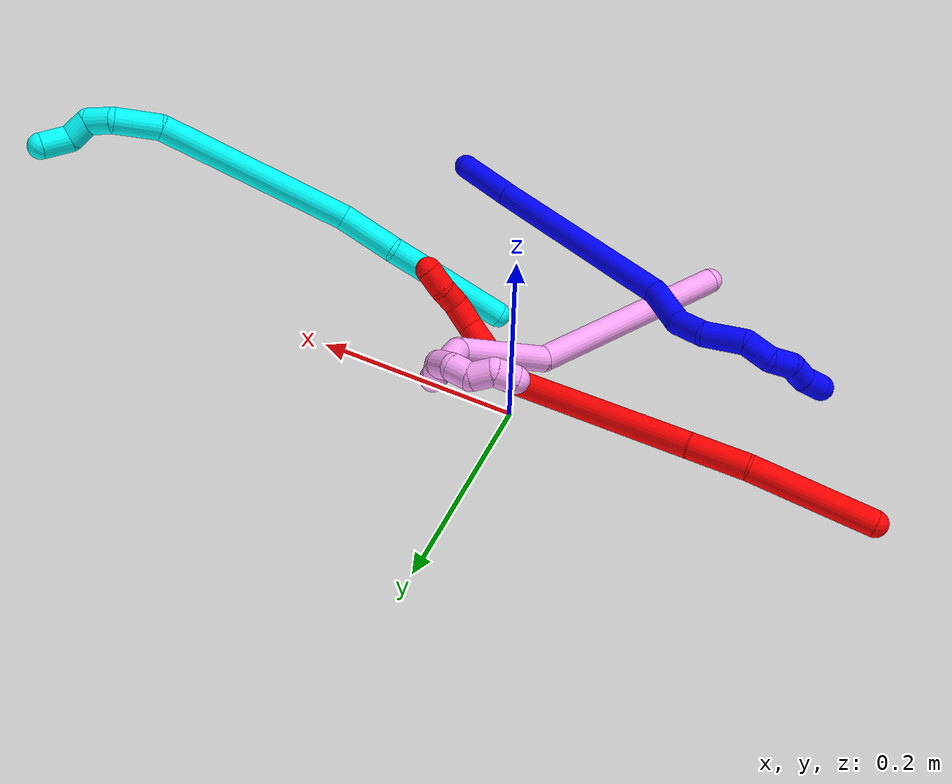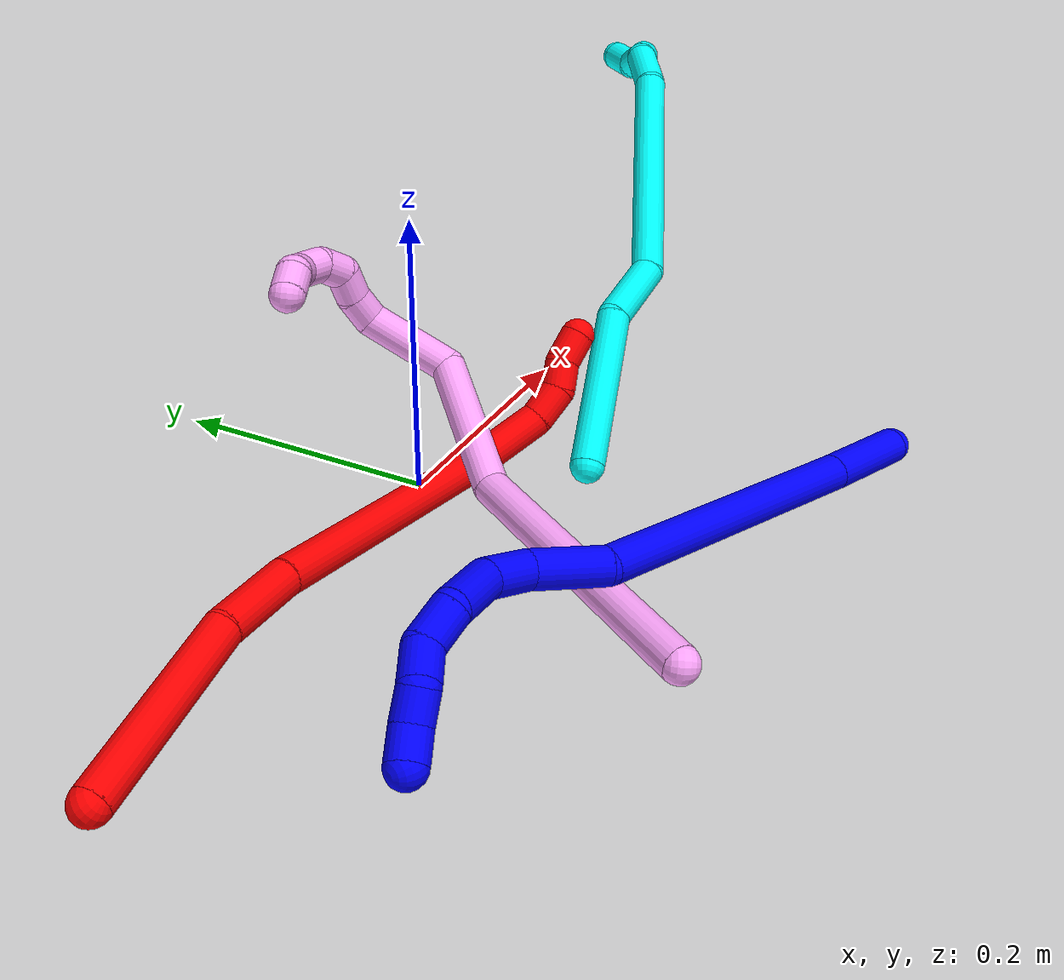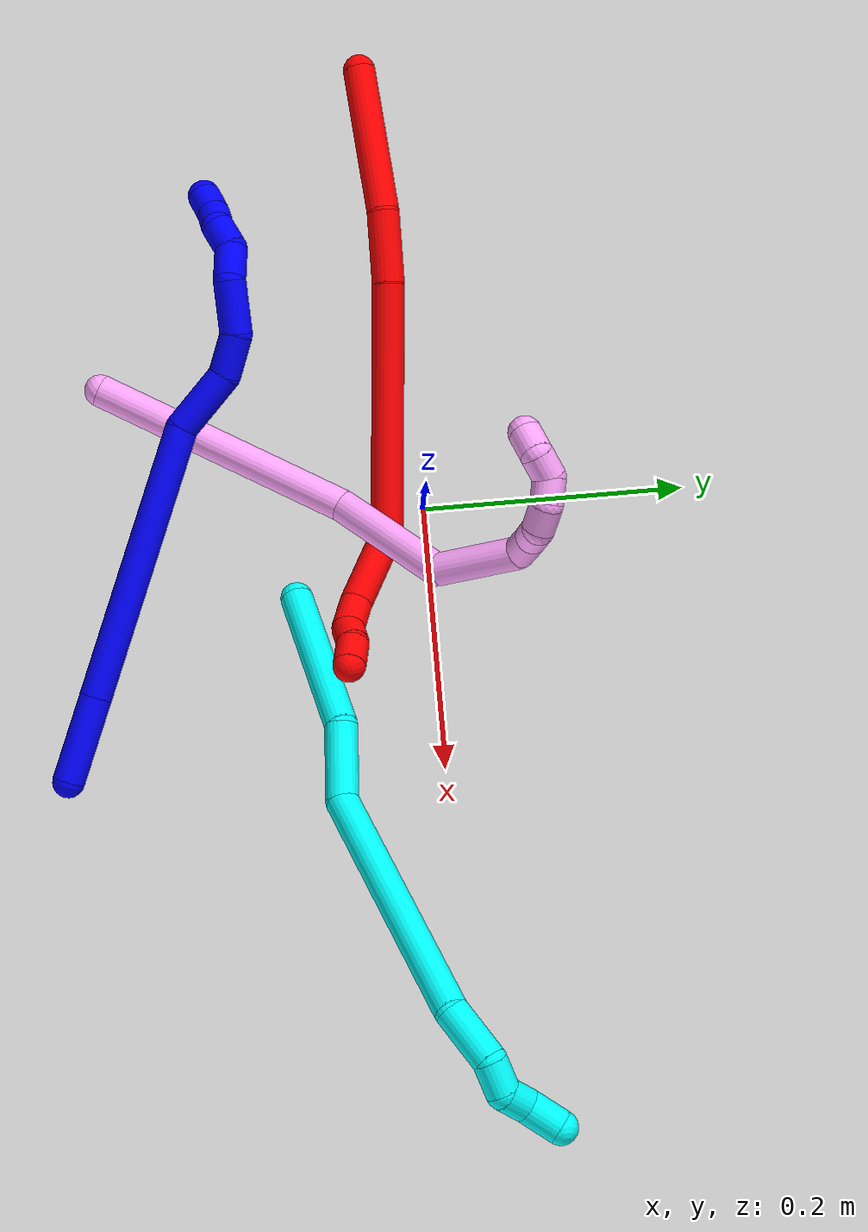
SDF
<sdf version="1.7">
 <world name="default">
  <plugin name="TubeGeneratorPlugin" filename="libtube_generator_plugin.so"/>
  <model name="photoneo_s_sensor">
   <static>1</static>
   <pose>0 0 2 1.57079 1.57079 3.14159</pose>
   <link name="link">
    <inertial><mass>0.1</mass></inertial>
    <sensor name="sensor" type="depth">
     <update_rate>30</update_rate>
     <camera>
      <horizontal_fov>1.22</horizontal_fov>
      <image><width>1920</width><height>1200</height><format>B8G8R8</format></image>
      <clip><near>0.1</near><far>4</far></clip>
      <depth_camera><output>points</output></depth_camera>
     </camera>
     <plugin name="camera_plugin" filename="libgazebo_ros_depth_camera.so">
      <baseline>0.2</baseline>
      <alwaysOn>1</alwaysOn>
      <updateRate>0.0</updateRate>
      <cameraName>camera_ir</cameraName>
      <imageTopicName>/camera/color/image_raw</imageTopicName>
      <cameraInfoTopicName>/camera/color/camera_info</cameraInfoTopicName>
      <depthImageTopicName>/camera/depth/image_raw</depthImageTopicName>
      <depthImageCameraInfoTopicName>/camera/depth/camera_info</depthImageCameraInfoTopicName>
      <pointCloudTopicName>/camera/depth/points</pointCloudTopicName>
      <frameName>fr_optical</frameName>
      <pointCloudCutoff>0.1</pointCloudCutoff>
      <pointCloudCutoffMax>2.0</pointCloudCutoffMax>
      <distortionK1>0</distortionK1>
      <distortionK2>0</distortionK2>
      <distortionK3>0</distortionK3>
      <distortionT1>0</distortionT1>
      <distortionT2>0</distortionT2>
      <CxPrime>0</CxPrime>
      <Cx>0</Cx>
      <Cy>0</Cy>
      <focalLength>0</focalLength>
      <hackBaseline>0</hackBaseline>
     </plugin>
    </sensor>
   </link>
  </model>
  <gravity>0 0 -9.8</gravity>
  <magnetic_field>6e-06 2.3e-05 -4.2e-05</magnetic_field>
  <atmosphere type="adiabatic"/>
  <physics name="default_physics" default="0" type="ode">
   <max_step_size>0.003</max_step_size>
   <real_time_factor>1</real_time_factor>
   <real_time_update_rate>1000</real_time_update_rate>
   <max_contacts>10000</max_contacts>
   <ode>
    <solver>
     <type>quick</type>
     <iters>100</iters>
     <sor>1.3</sor>
     <use_dynamic_moi_rescaling>0</use_dynamic_moi_rescaling>
    </solver>
    <constraints>
     <contact_max_correcting_vel>0</contact_max_correcting_vel>
     <contact_surface_layer>0.001</contact_surface_layer>
     <cfm>0</cfm>
     <erp>0.2</erp>
    </constraints>
   </ode>
  </physics>
  <scene><ambient>0.4 0.4 0.4 1</ambient><background>0.7 0.7 0.7 1</background><shadows>0</shadows></scene>
  <audio><device>default</device></audio>
  <spherical_coordinates>
   <surface_model>EARTH_WGS84</surface_model>
   <latitude_deg>0</latitude_deg>
   <longitude_deg>0</longitude_deg>
   <elevation>0</elevation>
   <heading_deg>0</heading_deg>
  </spherical_coordinates>
  <model name="bin">
   <static>1</static>
   <link name="bottom">
    <collision name="collision-bottom">
     <pose>0 0 -0.01 0 -0 0</pose>
     <geometry><box><size>0.8 0.6 0.02</size></box></geometry>
     <surface>
      <friction><ode><mu>100</mu><mu2>100</mu2></ode></friction>
      <contact><collide_bitmask>65535</collide_bitmask></contact>
     </surface>
    </collision>
   </link>
   <link name="west_wall">
    <collision name="collision-west_wall">
     <pose>-0.41 0 0.1 0 -0 0</pose>
     <geometry><box><size>0.02 0.6 0.2</size></box></geometry>
     <surface>
      <friction><ode><mu>100</mu><mu2>100</mu2></ode></friction>
      <contact><collide_bitmask>65535</collide_bitmask></contact>
     </surface>
    </collision>
   </link>
   <link name="east_wall">
    <collision name="collision-east_wall">
     <pose>0.41 0 0.1 0 -0 0</pose>
     <geometry><box><size>0.02 0.6 0.2</size></box></geometry>
     <surface>
      <friction><ode><mu>100</mu><mu2>100</mu2></ode></friction>
      <contact><collide_bitmask>65535</collide_bitmask></contact>
     </surface>
    </collision>
   </link>
   <link name="south_wall">
    <collision name="collision-south_wall">
     <pose>0 -0.31 0.1 0 -0 0</pose>
     <geometry><box><size>0.8 0.02 0.2</size></box></geometry>
     <surface>
      <friction><ode><mu>100</mu><mu2>100</mu2></ode></friction>
      <contact><collide_bitmask>65535</collide_bitmask></contact>
     </surface>
    </collision>
   </link>
   <link name="north_wall">
    <collision name="collision-north_wall">
     <pose>0 0.31 0.1 0 -0 0</pose>
     <geometry><box><size>0.8 0.02 0.2</size></box></geometry>
     <surface>
      <friction><ode><mu>100</mu><mu2>100</mu2></ode></friction>
      <contact><collide_bitmask>65535</collide_bitmask></contact>
     </surface>
    </collision>
   </link>
  </model>
  <model name="1">
   <static>0</static>
   <link name="1">
    <collision name="collision-cylinder-e_1_1_4">
     <pose>0.001792 -0.000652 -0.033823 3.12232 0.052916 2.44322</pose>
     <geometry><cylinder><radius>0.0125</radius><length>0.067754</length></cylinder></geometry>
     <surface>
      <friction><ode><mu>1.16</mu><mu2>1.16</mu2><slip1>0</slip1><slip2>0</slip2></ode></friction>
      <contact><ode><kp>1e+06</kp><kd>1</kd><max_vel>0</max_vel><min_depth>0.001</min_depth></ode></contact>
     </surface>
    </collision>
    <visual name="visual-cylinder-e_1_1_4">
     <pose>0.001792 -0.000652 -0.033823 3.12232 0.052916 2.44322</pose>
     <geometry><cylinder><radius>0.0125</radius><length>0.067754</length></cylinder></geometry>
     <material><ambient>0 0 1 1</ambient></material>
    </visual>
    <collision name="collision-cylinder-e_2_4_5">
     <pose>0.011237 -0.000486 -0.175051 -3.13398 0.07114 -2.92853</pose>
     <geometry><cylinder><radius>0.0125</radius><length>0.21536</length></cylinder></geometry>
     <surface>
      <friction><ode><mu>1.16</mu><mu2>1.16</mu2><slip1>0</slip1><slip2>0</slip2></ode></friction>
      <contact><ode><kp>1e+06</kp><kd>1</kd><max_vel>0</max_vel><min_depth>0.001</min_depth></ode></contact>
     </surface>
    </collision>
    <visual name="visual-cylinder-e_2_4_5">
     <pose>0.011237 -0.000486 -0.175051 -3.13398 0.07114 -2.92853</pose>
     <geometry><cylinder><radius>0.0125</radius><length>0.21536</length></cylinder></geometry>
     <material><ambient>0 0 1 1</ambient></material>
    </visual>
    <collision name="collision-cylinder-e_3_5_6">
     <pose>0.029992 -0.002408 -0.305545 3.02353 0.445429 2.63108</pose>
     <geometry><cylinder><radius>0.0125</radius><length>0.051531</length></cylinder></geometry>
     <surface>
      <friction><ode><mu>1.16</mu><mu2>1.16</mu2><slip1>0</slip1><slip2>0</slip2></ode></friction>
      <contact><ode><kp>1e+06</kp><kd>1</kd><max_vel>0</max_vel><min_depth>0.001</min_depth></ode></contact>
     </surface>
    </collision>
    <visual name="visual-cylinder-e_3_5_6">
     <pose>0.029992 -0.002408 -0.305545 3.02353 0.445429 2.63108</pose>
     <geometry><cylinder><radius>0.0125</radius><length>0.051531</length></cylinder></geometry>
     <material><ambient>0 0 1 1</ambient></material>
    </visual>
    <collision name="collision-cylinder-e_4_6_7">
     <pose>0.043391 -0.002389 -0.344675 -2.97139 0.140249 -1.37766</pose>
     <geometry><cylinder><radius>0.0125</radius><length>0.032874</length></cylinder></geometry>
     <surface>
      <friction><ode><mu>1.16</mu><mu2>1.16</mu2><slip1>0</slip1><slip2>0</slip2></ode></friction>
      <contact><ode><kp>1e+06</kp><kd>1</kd><max_vel>0</max_vel><min_depth>0.001</min_depth></ode></contact>
     </surface>
    </collision>
    <visual name="visual-cylinder-e_4_6_7">
     <pose>0.043391 -0.002389 -0.344675 -2.97139 0.140249 -1.37766</pose>
     <geometry><cylinder><radius>0.0125</radius><length>0.032874</length></cylinder></geometry>
     <material><ambient>0 0 1 1</ambient></material>
    </visual>
    <collision name="collision-cylinder-e_5_7_8">
     <pose>0.040502 0.006205 -0.379713 -2.8435 -0.255261 1.41432</pose>
     <geometry><cylinder><radius>0.0125</radius><length>0.041079</length></cylinder></geometry>
     <surface>
      <friction><ode><mu>1.16</mu><mu2>1.16</mu2><slip1>0</slip1><slip2>0</slip2></ode></friction>
      <contact><ode><kp>1e+06</kp><kd>1</kd><max_vel>0</max_vel><min_depth>0.001</min_depth></ode></contact>
     </surface>
    </collision>
    <visual name="visual-cylinder-e_5_7_8">
     <pose>0.040502 0.006205 -0.379713 -2.8435 -0.255261 1.41432</pose>
     <geometry><cylinder><radius>0.0125</radius><length>0.041079</length></cylinder></geometry>
     <material><ambient>0 0 1 1</ambient></material>
    </visual>
    <collision name="collision-cylinder-e_6_8_9">
     <pose>0.030451 0.009201 -0.411011 2.91467 -0.367858 -2.04242</pose>
     <geometry><cylinder><radius>0.0125</radius><length>0.027058</length></cylinder></geometry>
     <surface>
      <friction><ode><mu>1.16</mu><mu2>1.16</mu2><slip1>0</slip1><slip2>0</slip2></ode></friction>
      <contact><ode><kp>1e+06</kp><kd>1</kd><max_vel>0</max_vel><min_depth>0.001</min_depth></ode></contact>
     </surface>
    </collision>
    <visual name="visual-cylinder-e_6_8_9">
     <pose>0.030451 0.009201 -0.411011 2.91467 -0.367858 -2.04242</pose>
     <geometry><cylinder><radius>0.0125</radius><length>0.027058</length></cylinder></geometry>
     <material><ambient>0 0 1 1</ambient></material>
    </visual>
    <collision name="collision-cylinder-e_7_9_10">
     <pose>0.016617 0.006084 -0.430976 3.10546 -0.863263 -3.06317</pose>
     <geometry><cylinder><radius>0.0125</radius><length>0.023602</length></cylinder></geometry>
     <surface>
      <friction><ode><mu>1.16</mu><mu2>1.16</mu2><slip1>0</slip1><slip2>0</slip2></ode></friction>
      <contact><ode><kp>1e+06</kp><kd>1</kd><max_vel>0</max_vel><min_depth>0.001</min_depth></ode></contact>
     </surface>
    </collision>
    <visual name="visual-cylinder-e_7_9_10">
     <pose>0.016617 0.006084 -0.430976 3.10546 -0.863263 -3.06317</pose>
     <geometry><cylinder><radius>0.0125</radius><length>0.023602</length></cylinder></geometry>
     <material><ambient>0 0 1 1</ambient></material>
    </visual>
    <collision name="collision-cylinder-e_8_10_11">
     <pose>0.000835 0.000692 -0.444006 2.38001 -0.743359 -1.54413</pose>
     <geometry><cylinder><radius>0.0125</radius><length>0.020136</length></cylinder></geometry>
     <surface>
      <friction><ode><mu>1.16</mu><mu2>1.16</mu2><slip1>0</slip1><slip2>0</slip2></ode></friction>
      <contact><ode><kp>1e+06</kp><kd>1</kd><max_vel>0</max_vel><min_depth>0.001</min_depth></ode></contact>
     </surface>
    </collision>
    <visual name="visual-cylinder-e_8_10_11">
     <pose>0.000835 0.000692 -0.444006 2.38001 -0.743359 -1.54413</pose>
     <geometry><cylinder><radius>0.0125</radius><length>0.020136</length></cylinder></geometry>
     <material><ambient>0 0 1 1</ambient></material>
    </visual>
    <collision name="collision-cylinder-e_9_11_2">
     <pose>-0.013812 -0.006617 -0.455693 2.80757 -0.86375 -2.44027</pose>
     <geometry><cylinder><radius>0.0125</radius><length>0.020607</length></cylinder></geometry>
     <surface>
      <friction><ode><mu>1.16</mu><mu2>1.16</mu2><slip1>0</slip1><slip2>0</slip2></ode></friction>
      <contact><ode><kp>1e+06</kp><kd>1</kd><max_vel>0</max_vel><min_depth>0.001</min_depth></ode></contact>
     </surface>
    </collision>
    <visual name="visual-cylinder-e_9_11_2">
     <pose>-0.013812 -0.006617 -0.455693 2.80757 -0.86375 -2.44027</pose>
     <geometry><cylinder><radius>0.0125</radius><length>0.020607</length></cylinder></geometry>
     <material><ambient>0 0 1 1</ambient></material>
    </visual>
    <collision name="collision-sphere-2">
     <pose>-0.021645 -0.008811 -0.462016 0 -0 0</pose>
     <geometry><sphere><radius>0.0125</radius></sphere></geometry>
     <surface>
      <friction><ode><mu>1.16</mu><mu2>1.16</mu2><slip1>0</slip1><slip2>0</slip2></ode></friction>
      <contact><ode><kp>1e+06</kp><kd>1</kd><max_vel>0</max_vel><min_depth>0.001</min_depth></ode></contact>
     </surface>
    </collision>
    <visual name="visual-sphere-2">
     <pose>-0.021645 -0.008811 -0.462016 0 -0 0</pose>
     <geometry><sphere><radius>0.0125</radius></sphere></geometry>
     <material><ambient>0 0 1 1</ambient></material>
    </visual>
    <collision name="collision-sphere-11">
     <pose>-0.005978 -0.004423 -0.44937 0 -0 0</pose>
     <geometry><sphere><radius>0.0125</radius></sphere></geometry>
     <surface>
      <friction><ode><mu>1.16</mu><mu2>1.16</mu2><slip1>0</slip1><slip2>0</slip2></ode></friction>
      <contact><ode><kp>1e+06</kp><kd>1</kd><max_vel>0</max_vel><min_depth>0.001</min_depth></ode></contact>
     </surface>
    </collision>
    <visual name="visual-sphere-11">
     <pose>-0.005978 -0.004423 -0.44937 0 -0 0</pose>
     <geometry><sphere><radius>0.0125</radius></sphere></geometry>
     <material><ambient>0 0 1 1</ambient></material>
    </visual>
    <collision name="collision-sphere-10">
     <pose>0.007649 0.005807 -0.438641 0 -0 0</pose>
     <geometry><sphere><radius>0.0125</radius></sphere></geometry>
     <surface>
      <friction><ode><mu>1.16</mu><mu2>1.16</mu2><slip1>0</slip1><slip2>0</slip2></ode></friction>
      <contact><ode><kp>1e+06</kp><kd>1</kd><max_vel>0</max_vel><min_depth>0.001</min_depth></ode></contact>
     </surface>
    </collision>
    <visual name="visual-sphere-10">
     <pose>0.007649 0.005807 -0.438641 0 -0 0</pose>
     <geometry><sphere><radius>0.0125</radius></sphere></geometry>
     <material><ambient>0 0 1 1</ambient></material>
    </visual>
    <collision name="collision-sphere-9">
     <pose>0.025586 0.006361 -0.423311 0 -0 0</pose>
     <geometry><sphere><radius>0.0125</radius></sphere></geometry>
     <surface>
      <friction><ode><mu>1.16</mu><mu2>1.16</mu2><slip1>0</slip1><slip2>0</slip2></ode></friction>
      <contact><ode><kp>1e+06</kp><kd>1</kd><max_vel>0</max_vel><min_depth>0.001</min_depth></ode></contact>
     </surface>
    </collision>
    <visual name="visual-sphere-9">
     <pose>0.025586 0.006361 -0.423311 0 -0 0</pose>
     <geometry><sphere><radius>0.0125</radius></sphere></geometry>
     <material><ambient>0 0 1 1</ambient></material>
    </visual>
    <collision name="collision-sphere-4">
     <pose>0.003584 -0.001304 -0.067646 0 -0 0</pose>
     <geometry><sphere><radius>0.0125</radius></sphere></geometry>
     <surface>
      <friction><ode><mu>1.16</mu><mu2>1.16</mu2><slip1>0</slip1><slip2>0</slip2></ode></friction>
      <contact><ode><kp>1e+06</kp><kd>1</kd><max_vel>0</max_vel><min_depth>0.001</min_depth></ode></contact>
     </surface>
    </collision>
    <visual name="visual-sphere-4">
     <pose>0.003584 -0.001304 -0.067646 0 -0 0</pose>
     <geometry><sphere><radius>0.0125</radius></sphere></geometry>
     <material><ambient>0 0 1 1</ambient></material>
    </visual>
    <collision name="collision-sphere-1">
     <geometry><sphere><radius>0.0125</radius></sphere></geometry>
     <surface>
      <friction><ode><mu>1.16</mu><mu2>1.16</mu2><slip1>0</slip1><slip2>0</slip2></ode></friction>
      <contact><ode><kp>1e+06</kp><kd>1</kd><max_vel>0</max_vel><min_depth>0.001</min_depth></ode></contact>
     </surface>
    </collision>
    <visual name="visual-sphere-1">
     <geometry><sphere><radius>0.0125</radius></sphere></geometry>
     <material><ambient>0 0 1 1</ambient></material>
    </visual>
    <collision name="collision-sphere-8">
     <pose>0.035316 0.012042 -0.398711 0 -0 0</pose>
     <geometry><sphere><radius>0.0125</radius></sphere></geometry>
     <surface>
      <friction><ode><mu>1.16</mu><mu2>1.16</mu2><slip1>0</slip1><slip2>0</slip2></ode></friction>
      <contact><ode><kp>1e+06</kp><kd>1</kd><max_vel>0</max_vel><min_depth>0.001</min_depth></ode></contact>
     </surface>
    </collision>
    <visual name="visual-sphere-8">
     <pose>0.035316 0.012042 -0.398711 0 -0 0</pose>
     <geometry><sphere><radius>0.0125</radius></sphere></geometry>
     <material><ambient>0 0 1 1</ambient></material>
    </visual>
    <collision name="collision-sphere-5">
     <pose>0.018891 0.000331 -0.282455 0 -0 0</pose>
     <geometry><sphere><radius>0.0125</radius></sphere></geometry>
     <surface>
      <friction><ode><mu>1.16</mu><mu2>1.16</mu2><slip1>0</slip1><slip2>0</slip2></ode></friction>
      <contact><ode><kp>1e+06</kp><kd>1</kd><max_vel>0</max_vel><min_depth>0.001</min_depth></ode></contact>
     </surface>
    </collision>
    <visual name="visual-sphere-5">
     <pose>0.018891 0.000331 -0.282455 0 -0 0</pose>
     <geometry><sphere><radius>0.0125</radius></sphere></geometry>
     <material><ambient>0 0 1 1</ambient></material>
    </visual>
    <collision name="collision-sphere-6">
     <pose>0.041093 -0.005146 -0.328634 0 -0 0</pose>
     <geometry><sphere><radius>0.0125</radius></sphere></geometry>
     <surface>
      <friction><ode><mu>1.16</mu><mu2>1.16</mu2><slip1>0</slip1><slip2>0</slip2></ode></friction>
      <contact><ode><kp>1e+06</kp><kd>1</kd><max_vel>0</max_vel><min_depth>0.001</min_depth></ode></contact>
     </surface>
    </collision>
    <visual name="visual-sphere-6">
     <pose>0.041093 -0.005146 -0.328634 0 -0 0</pose>
     <geometry><sphere><radius>0.0125</radius></sphere></geometry>
     <material><ambient>0 0 1 1</ambient></material>
    </visual>
    <collision name="collision-sphere-7">
     <pose>0.045689 0.000368 -0.360715 0 -0 0</pose>
     <geometry><sphere><radius>0.0125</radius></sphere></geometry>
     <surface>
      <friction><ode><mu>1.16</mu><mu2>1.16</mu2><slip1>0</slip1><slip2>0</slip2></ode></friction>
      <contact><ode><kp>1e+06</kp><kd>1</kd><max_vel>0</max_vel><min_depth>0.001</min_depth></ode></contact>
     </surface>
    </collision>
    <visual name="visual-sphere-7">
     <pose>0.045689 0.000368 -0.360715 0 -0 0</pose>
     <geometry><sphere><radius>0.0125</radius></sphere></geometry>
     <material><ambient>0 0 1 1</ambient></material>
    </visual>
    <inertial>
     <pose>0.016251 0.000347 -0.244577 0 -0 0</pose>
     <mass>0.5</mass>
     <inertia>
      <ixx>-0.001009</ixx>
      <ixy>0</ixy>
      <ixz>0</ixz>
      <iyy>0.000705</iyy>
      <iyz>0</iyz>
      <izz>-0.000103</izz>
     </inertia>
    </inertial>
   </link>
   <pose>0.185818 -0.287473 0.013112 1.62433 -0.503338 1.20701</pose>
  </model>
  <model name="2">
   <static>0</static>
   <link name="2">
    <collision name="collision-cylinder-e_1_1_4">
     <pose>0.050939 0.020466 0.023648 -0.713378 1.02018 -0.411064</pose>
     <geometry><cylinder><radius>0.0125</radius><length>0.119546</length></cylinder></geometry>
     <surface>
      <friction><ode><mu>1.16</mu><mu2>1.16</mu2><slip1>0</slip1><slip2>0</slip2></ode></friction>
      <contact><ode><kp>1e+06</kp><kd>1</kd><max_vel>0</max_vel><min_depth>0.001</min_depth></ode></contact>
     </surface>
    </collision>
    <visual name="visual-cylinder-e_1_1_4">
     <pose>0.050939 0.020466 0.023648 -0.713378 1.02018 -0.411064</pose>
     <geometry><cylinder><radius>0.0125</radius><length>0.119546</length></cylinder></geometry>
     <material><ambient>1 0 0 1</ambient></material>
    </visual>
    <collision name="collision-cylinder-e_2_4_5">
     <pose>0.127924 0.044915 0.056053 -0.42697 1.21697 -0.299792</pose>
     <geometry><cylinder><radius>0.0125</radius><length>0.055532</length></cylinder></geometry>
     <surface>
      <friction><ode><mu>1.16</mu><mu2>1.16</mu2><slip1>0</slip1><slip2>0</slip2></ode></friction>
      <contact><ode><kp>1e+06</kp><kd>1</kd><max_vel>0</max_vel><min_depth>0.001</min_depth></ode></contact>
     </surface>
    </collision>
    <visual name="visual-cylinder-e_2_4_5">
     <pose>0.127924 0.044915 0.056053 -0.42697 1.21697 -0.299792</pose>
     <geometry><cylinder><radius>0.0125</radius><length>0.055532</length></cylinder></geometry>
     <material><ambient>1 0 0 1</ambient></material>
    </visual>
    <collision name="collision-cylinder-e_3_5_6">
     <pose>0.245574 0.051078 0.093304 -0.076323 1.2684 -0.056153</pose>
     <geometry><cylinder><radius>0.0125</radius><length>0.191916</length></cylinder></geometry>
     <surface>
      <friction><ode><mu>1.16</mu><mu2>1.16</mu2><slip1>0</slip1><slip2>0</slip2></ode></friction>
      <contact><ode><kp>1e+06</kp><kd>1</kd><max_vel>0</max_vel><min_depth>0.001</min_depth></ode></contact>
     </surface>
    </collision>
    <visual name="visual-cylinder-e_3_5_6">
     <pose>0.245574 0.051078 0.093304 -0.076323 1.2684 -0.056153</pose>
     <geometry><cylinder><radius>0.0125</radius><length>0.191916</length></cylinder></geometry>
     <material><ambient>1 0 0 1</ambient></material>
    </visual>
    <collision name="collision-cylinder-e_4_6_7">
     <pose>0.356268 0.054064 0.146622 -0.032491 0.655317 -0.011045</pose>
     <geometry><cylinder><radius>0.0125</radius><length>0.062652</length></cylinder></geometry>
     <surface>
      <friction><ode><mu>1.16</mu><mu2>1.16</mu2><slip1>0</slip1><slip2>0</slip2></ode></friction>
      <contact><ode><kp>1e+06</kp><kd>1</kd><max_vel>0</max_vel><min_depth>0.001</min_depth></ode></contact>
     </surface>
    </collision>
    <visual name="visual-cylinder-e_4_6_7">
     <pose>0.356268 0.054064 0.146622 -0.032491 0.655317 -0.011045</pose>
     <geometry><cylinder><radius>0.0125</radius><length>0.062652</length></cylinder></geometry>
     <material><ambient>1 0 0 1</ambient></material>
    </visual>
    <collision name="collision-cylinder-e_5_7_8">
     <pose>0.381514 0.058812 0.182406 -0.345226 0.486233 -0.086431</pose>
     <geometry><cylinder><radius>0.0125</radius><length>0.026349</length></cylinder></geometry>
     <surface>
      <friction><ode><mu>1.16</mu><mu2>1.16</mu2><slip1>0</slip1><slip2>0</slip2></ode></friction>
      <contact><ode><kp>1e+06</kp><kd>1</kd><max_vel>0</max_vel><min_depth>0.001</min_depth></ode></contact>
     </surface>
    </collision>
    <visual name="visual-cylinder-e_5_7_8">
     <pose>0.381514 0.058812 0.182406 -0.345226 0.486233 -0.086431</pose>
     <geometry><cylinder><radius>0.0125</radius><length>0.026349</length></cylinder></geometry>
     <material><ambient>1 0 0 1</ambient></material>
    </visual>
    <collision name="collision-cylinder-e_6_8_9">
     <pose>0.390832 0.070106 0.199987 -0.837665 0.309253 -0.138557</pose>
     <geometry><cylinder><radius>0.0125</radius><length>0.020773</length></cylinder></geometry>
     <surface>
      <friction><ode><mu>1.16</mu><mu2>1.16</mu2><slip1>0</slip1><slip2>0</slip2></ode></friction>
      <contact><ode><kp>1e+06</kp><kd>1</kd><max_vel>0</max_vel><min_depth>0.001</min_depth></ode></contact>
     </surface>
    </collision>
    <visual name="visual-cylinder-e_6_8_9">
     <pose>0.390832 0.070106 0.199987 -0.837665 0.309253 -0.138557</pose>
     <geometry><cylinder><radius>0.0125</radius><length>0.020773</length></cylinder></geometry>
     <material><ambient>1 0 0 1</ambient></material>
    </visual>
    <collision name="collision-cylinder-e_7_9_2">
     <pose>0.399081 0.082429 0.215792 -0.496193 0.453347 -0.116715</pose>
     <geometry><cylinder><radius>0.0125</radius><length>0.023232</length></cylinder></geometry>
     <surface>
      <friction><ode><mu>1.16</mu><mu2>1.16</mu2><slip1>0</slip1><slip2>0</slip2></ode></friction>
      <contact><ode><kp>1e+06</kp><kd>1</kd><max_vel>0</max_vel><min_depth>0.001</min_depth></ode></contact>
     </surface>
    </collision>
    <visual name="visual-cylinder-e_7_9_2">
     <pose>0.399081 0.082429 0.215792 -0.496193 0.453347 -0.116715</pose>
     <geometry><cylinder><radius>0.0125</radius><length>0.023232</length></cylinder></geometry>
     <material><ambient>1 0 0 1</ambient></material>
    </visual>
    <collision name="collision-sphere-2">
     <pose>0.404168 0.087401 0.224975 0 -0 0</pose>
     <geometry><sphere><radius>0.0125</radius></sphere></geometry>
     <surface>
      <friction><ode><mu>1.16</mu><mu2>1.16</mu2><slip1>0</slip1><slip2>0</slip2></ode></friction>
      <contact><ode><kp>1e+06</kp><kd>1</kd><max_vel>0</max_vel><min_depth>0.001</min_depth></ode></contact>
     </surface>
    </collision>
    <visual name="visual-sphere-2">
     <pose>0.404168 0.087401 0.224975 0 -0 0</pose>
     <geometry><sphere><radius>0.0125</radius></sphere></geometry>
     <material><ambient>1 0 0 1</ambient></material>
    </visual>
    <collision name="collision-sphere-9">
     <pose>0.393993 0.077458 0.206608 0 -0 0</pose>
     <geometry><sphere><radius>0.0125</radius></sphere></geometry>
     <surface>
      <friction><ode><mu>1.16</mu><mu2>1.16</mu2><slip1>0</slip1><slip2>0</slip2></ode></friction>
      <contact><ode><kp>1e+06</kp><kd>1</kd><max_vel>0</max_vel><min_depth>0.001</min_depth></ode></contact>
     </surface>
    </collision>
    <visual name="visual-sphere-9">
     <pose>0.393993 0.077458 0.206608 0 -0 0</pose>
     <geometry><sphere><radius>0.0125</radius></sphere></geometry>
     <material><ambient>1 0 0 1</ambient></material>
    </visual>
    <collision name="collision-sphere-4">
     <pose>0.101878 0.040931 0.047296 0 -0 0</pose>
     <geometry><sphere><radius>0.0125</radius></sphere></geometry>
     <surface>
      <friction><ode><mu>1.16</mu><mu2>1.16</mu2><slip1>0</slip1><slip2>0</slip2></ode></friction>
      <contact><ode><kp>1e+06</kp><kd>1</kd><max_vel>0</max_vel><min_depth>0.001</min_depth></ode></contact>
     </surface>
    </collision>
    <visual name="visual-sphere-4">
     <pose>0.101878 0.040931 0.047296 0 -0 0</pose>
     <geometry><sphere><radius>0.0125</radius></sphere></geometry>
     <material><ambient>1 0 0 1</ambient></material>
    </visual>
    <collision name="collision-sphere-1">
     <geometry><sphere><radius>0.0125</radius></sphere></geometry>
     <surface>
      <friction><ode><mu>1.16</mu><mu2>1.16</mu2><slip1>0</slip1><slip2>0</slip2></ode></friction>
      <contact><ode><kp>1e+06</kp><kd>1</kd><max_vel>0</max_vel><min_depth>0.001</min_depth></ode></contact>
     </surface>
    </collision>
    <visual name="visual-sphere-1">
     <geometry><sphere><radius>0.0125</radius></sphere></geometry>
     <material><ambient>1 0 0 1</ambient></material>
    </visual>
    <collision name="collision-sphere-8">
     <pose>0.387671 0.062754 0.193366 0 -0 0</pose>
     <geometry><sphere><radius>0.0125</radius></sphere></geometry>
     <surface>
      <friction><ode><mu>1.16</mu><mu2>1.16</mu2><slip1>0</slip1><slip2>0</slip2></ode></friction>
      <contact><ode><kp>1e+06</kp><kd>1</kd><max_vel>0</max_vel><min_depth>0.001</min_depth></ode></contact>
     </surface>
    </collision>
    <visual name="visual-sphere-8">
     <pose>0.387671 0.062754 0.193366 0 -0 0</pose>
     <geometry><sphere><radius>0.0125</radius></sphere></geometry>
     <material><ambient>1 0 0 1</ambient></material>
    </visual>
    <collision name="collision-sphere-5">
     <pose>0.15397 0.048899 0.06481 0 -0 0</pose>
     <geometry><sphere><radius>0.0125</radius></sphere></geometry>
     <surface>
      <friction><ode><mu>1.16</mu><mu2>1.16</mu2><slip1>0</slip1><slip2>0</slip2></ode></friction>
      <contact><ode><kp>1e+06</kp><kd>1</kd><max_vel>0</max_vel><min_depth>0.001</min_depth></ode></contact>
     </surface>
    </collision>
    <visual name="visual-sphere-5">
     <pose>0.15397 0.048899 0.06481 0 -0 0</pose>
     <geometry><sphere><radius>0.0125</radius></sphere></geometry>
     <material><ambient>1 0 0 1</ambient></material>
    </visual>
    <collision name="collision-sphere-6">
     <pose>0.337177 0.053257 0.121798 0 -0 0</pose>
     <geometry><sphere><radius>0.0125</radius></sphere></geometry>
     <surface>
      <friction><ode><mu>1.16</mu><mu2>1.16</mu2><slip1>0</slip1><slip2>0</slip2></ode></friction>
      <contact><ode><kp>1e+06</kp><kd>1</kd><max_vel>0</max_vel><min_depth>0.001</min_depth></ode></contact>
     </surface>
    </collision>
    <visual name="visual-sphere-6">
     <pose>0.337177 0.053257 0.121798 0 -0 0</pose>
     <geometry><sphere><radius>0.0125</radius></sphere></geometry>
     <material><ambient>1 0 0 1</ambient></material>
    </visual>
    <collision name="collision-sphere-7">
     <pose>0.375358 0.054871 0.171446 0 -0 0</pose>
     <geometry><sphere><radius>0.0125</radius></sphere></geometry>
     <surface>
      <friction><ode><mu>1.16</mu><mu2>1.16</mu2><slip1>0</slip1><slip2>0</slip2></ode></friction>
      <contact><ode><kp>1e+06</kp><kd>1</kd><max_vel>0</max_vel><min_depth>0.001</min_depth></ode></contact>
     </surface>
    </collision>
    <visual name="visual-sphere-7">
     <pose>0.375358 0.054871 0.171446 0 -0 0</pose>
     <geometry><sphere><radius>0.0125</radius></sphere></geometry>
     <material><ambient>1 0 0 1</ambient></material>
    </visual>
    <inertial>
     <pose>0.220173 0.046103 0.094013 0 -0 0</pose>
     <mass>0.5</mass>
     <inertia>
      <ixx>0.000265</ixx>
      <ixy>0</ixy>
      <ixz>0</ixz>
      <iyy>0.000739</iyy>
      <iyz>0</iyz>
      <izz>-0.000779</izz>
     </inertia>
    </inertial>
   </link>
   <pose>-0.344339 -0.020346 0.012423 0.762408 0.354855 0.100729</pose>
  </model>
  <model name="3">
   <static>0</static>
   <link name="3">
    <collision name="collision-cylinder-e_1_1_4">
     <pose>0.004058 0.0012 0.062717 -0.019139 0.064609 -0.000619</pose>
     <geometry><cylinder><radius>0.0125</radius><length>0.125719</length></cylinder></geometry>
     <surface>
      <friction><ode><mu>1.16</mu><mu2>1.16</mu2><slip1>0</slip1><slip2>0</slip2></ode></friction>
      <contact><ode><kp>1e+06</kp><kd>1</kd><max_vel>0</max_vel><min_depth>0.001</min_depth></ode></contact>
     </surface>
    </collision>
    <visual name="visual-cylinder-e_1_1_4">
     <pose>0.004058 0.0012 0.062717 -0.019139 0.064609 -0.000619</pose>
     <geometry><cylinder><radius>0.0125</radius><length>0.125719</length></cylinder></geometry>
     <material><ambient>0.003922 1 0.996078 1</ambient></material>
    </visual>
    <collision name="collision-cylinder-e_2_4_5">
     <pose>0.021537 0.002323 0.151528 0.002974 0.475012 0.00072</pose>
     <geometry><cylinder><radius>0.0125</radius><length>0.058686</length></cylinder></geometry>
     <surface>
      <friction><ode><mu>1.16</mu><mu2>1.16</mu2><slip1>0</slip1><slip2>0</slip2></ode></friction>
      <contact><ode><kp>1e+06</kp><kd>1</kd><max_vel>0</max_vel><min_depth>0.001</min_depth></ode></contact>
     </surface>
    </collision>
    <visual name="visual-cylinder-e_2_4_5">
     <pose>0.021537 0.002323 0.151528 0.002974 0.475012 0.00072</pose>
     <geometry><cylinder><radius>0.0125</radius><length>0.058686</length></cylinder></geometry>
     <material><ambient>0.003922 1 0.996078 1</ambient></material>
    </visual>
    <collision name="collision-cylinder-e_3_5_6">
     <pose>0.03317 0.013272 0.274684 -0.113113 -0.018292 0.001036</pose>
     <geometry><cylinder><radius>0.0125</radius><length>0.195405</length></cylinder></geometry>
     <surface>
      <friction><ode><mu>1.16</mu><mu2>1.16</mu2><slip1>0</slip1><slip2>0</slip2></ode></friction>
      <contact><ode><kp>1e+06</kp><kd>1</kd><max_vel>0</max_vel><min_depth>0.001</min_depth></ode></contact>
     </surface>
    </collision>
    <visual name="visual-cylinder-e_3_5_6">
     <pose>0.03317 0.013272 0.274684 -0.113113 -0.018292 0.001036</pose>
     <geometry><cylinder><radius>0.0125</radius><length>0.195405</length></cylinder></geometry>
     <material><ambient>0.003922 1 0.996078 1</ambient></material>
    </visual>
    <collision name="collision-cylinder-e_4_6_7">
     <pose>0.031753 0.033524 0.391715 -0.432808 0.016823 -0.003699</pose>
     <geometry><cylinder><radius>0.0125</radius><length>0.044001</length></cylinder></geometry>
     <surface>
      <friction><ode><mu>1.16</mu><mu2>1.16</mu2><slip1>0</slip1><slip2>0</slip2></ode></friction>
      <contact><ode><kp>1e+06</kp><kd>1</kd><max_vel>0</max_vel><min_depth>0.001</min_depth></ode></contact>
     </surface>
    </collision>
    <visual name="visual-cylinder-e_4_6_7">
     <pose>0.031753 0.033524 0.391715 -0.432808 0.016823 -0.003699</pose>
     <geometry><cylinder><radius>0.0125</radius><length>0.044001</length></cylinder></geometry>
     <material><ambient>0.003922 1 0.996078 1</ambient></material>
    </visual>
    <collision name="collision-cylinder-e_5_7_8">
     <pose>0.038006 0.049466 0.420266 -0.66405 0.495025 -0.173813</pose>
     <geometry><cylinder><radius>0.0125</radius><length>0.024768</length></cylinder></geometry>
     <surface>
      <friction><ode><mu>1.16</mu><mu2>1.16</mu2><slip1>0</slip1><slip2>0</slip2></ode></friction>
      <contact><ode><kp>1e+06</kp><kd>1</kd><max_vel>0</max_vel><min_depth>0.001</min_depth></ode></contact>
     </surface>
    </collision>
    <visual name="visual-cylinder-e_5_7_8">
     <pose>0.038006 0.049466 0.420266 -0.66405 0.495025 -0.173813</pose>
     <geometry><cylinder><radius>0.0125</radius><length>0.024768</length></cylinder></geometry>
     <material><ambient>0.003922 1 0.996078 1</ambient></material>
    </visual>
    <collision name="collision-cylinder-e_6_8_9">
     <pose>0.046129 0.067356 0.431235 -1.36029 0.193647 -0.156811</pose>
     <geometry><cylinder><radius>0.0125</radius><length>0.023286</length></cylinder></geometry>
     <surface>
      <friction><ode><mu>1.16</mu><mu2>1.16</mu2><slip1>0</slip1><slip2>0</slip2></ode></friction>
      <contact><ode><kp>1e+06</kp><kd>1</kd><max_vel>0</max_vel><min_depth>0.001</min_depth></ode></contact>
     </surface>
    </collision>
    <visual name="visual-cylinder-e_6_8_9">
     <pose>0.046129 0.067356 0.431235 -1.36029 0.193647 -0.156811</pose>
     <geometry><cylinder><radius>0.0125</radius><length>0.023286</length></cylinder></geometry>
     <material><ambient>0.003922 1 0.996078 1</ambient></material>
    </visual>
    <collision name="collision-cylinder-e_7_9_2">
     <pose>0.046457 0.088618 0.443237 -0.809431 -0.136435 0.058518</pose>
     <geometry><cylinder><radius>0.0125</radius><length>0.028135</length></cylinder></geometry>
     <surface>
      <friction><ode><mu>1.16</mu><mu2>1.16</mu2><slip1>0</slip1><slip2>0</slip2></ode></friction>
      <contact><ode><kp>1e+06</kp><kd>1</kd><max_vel>0</max_vel><min_depth>0.001</min_depth></ode></contact>
     </surface>
    </collision>
    <visual name="visual-cylinder-e_7_9_2">
     <pose>0.046457 0.088618 0.443237 -0.809431 -0.136435 0.058518</pose>
     <geometry><cylinder><radius>0.0125</radius><length>0.028135</length></cylinder></geometry>
     <material><ambient>0.003922 1 0.996078 1</ambient></material>
    </visual>
    <collision name="collision-sphere-2">
     <pose>0.044543 0.098706 0.452853 0 -0 0</pose>
     <geometry><sphere><radius>0.0125</radius></sphere></geometry>
     <surface>
      <friction><ode><mu>1.16</mu><mu2>1.16</mu2><slip1>0</slip1><slip2>0</slip2></ode></friction>
      <contact><ode><kp>1e+06</kp><kd>1</kd><max_vel>0</max_vel><min_depth>0.001</min_depth></ode></contact>
     </surface>
    </collision>
    <visual name="visual-sphere-2">
     <pose>0.044543 0.098706 0.452853 0 -0 0</pose>
     <geometry><sphere><radius>0.0125</radius></sphere></geometry>
     <material><ambient>0.003922 1 0.996078 1</ambient></material>
    </visual>
    <collision name="collision-sphere-9">
     <pose>0.04837 0.078529 0.433622 0 -0 0</pose>
     <geometry><sphere><radius>0.0125</radius></sphere></geometry>
     <surface>
      <friction><ode><mu>1.16</mu><mu2>1.16</mu2><slip1>0</slip1><slip2>0</slip2></ode></friction>
      <contact><ode><kp>1e+06</kp><kd>1</kd><max_vel>0</max_vel><min_depth>0.001</min_depth></ode></contact>
     </surface>
    </collision>
    <visual name="visual-sphere-9">
     <pose>0.04837 0.078529 0.433622 0 -0 0</pose>
     <geometry><sphere><radius>0.0125</radius></sphere></geometry>
     <material><ambient>0.003922 1 0.996078 1</ambient></material>
    </visual>
    <collision name="collision-sphere-4">
     <pose>0.008117 0.002401 0.125434 0 -0 0</pose>
     <geometry><sphere><radius>0.0125</radius></sphere></geometry>
     <surface>
      <friction><ode><mu>1.16</mu><mu2>1.16</mu2><slip1>0</slip1><slip2>0</slip2></ode></friction>
      <contact><ode><kp>1e+06</kp><kd>1</kd><max_vel>0</max_vel><min_depth>0.001</min_depth></ode></contact>
     </surface>
    </collision>
    <visual name="visual-sphere-4">
     <pose>0.008117 0.002401 0.125434 0 -0 0</pose>
     <geometry><sphere><radius>0.0125</radius></sphere></geometry>
     <material><ambient>0.003922 1 0.996078 1</ambient></material>
    </visual>
    <collision name="collision-sphere-1">
     <geometry><sphere><radius>0.0125</radius></sphere></geometry>
     <surface>
      <friction><ode><mu>1.16</mu><mu2>1.16</mu2><slip1>0</slip1><slip2>0</slip2></ode></friction>
      <contact><ode><kp>1e+06</kp><kd>1</kd><max_vel>0</max_vel><min_depth>0.001</min_depth></ode></contact>
     </surface>
    </collision>
    <visual name="visual-sphere-1">
     <geometry><sphere><radius>0.0125</radius></sphere></geometry>
     <material><ambient>0.003922 1 0.996078 1</ambient></material>
    </visual>
    <collision name="collision-sphere-8">
     <pose>0.043889 0.056182 0.428847 0 -0 0</pose>
     <geometry><sphere><radius>0.0125</radius></sphere></geometry>
     <surface>
      <friction><ode><mu>1.16</mu><mu2>1.16</mu2><slip1>0</slip1><slip2>0</slip2></ode></friction>
      <contact><ode><kp>1e+06</kp><kd>1</kd><max_vel>0</max_vel><min_depth>0.001</min_depth></ode></contact>
     </surface>
    </collision>
    <visual name="visual-sphere-8">
     <pose>0.043889 0.056182 0.428847 0 -0 0</pose>
     <geometry><sphere><radius>0.0125</radius></sphere></geometry>
     <material><ambient>0.003922 1 0.996078 1</ambient></material>
    </visual>
    <collision name="collision-sphere-5">
     <pose>0.034957 0.002246 0.177622 0 -0 0</pose>
     <geometry><sphere><radius>0.0125</radius></sphere></geometry>
     <surface>
      <friction><ode><mu>1.16</mu><mu2>1.16</mu2><slip1>0</slip1><slip2>0</slip2></ode></friction>
      <contact><ode><kp>1e+06</kp><kd>1</kd><max_vel>0</max_vel><min_depth>0.001</min_depth></ode></contact>
     </surface>
    </collision>
    <visual name="visual-sphere-5">
     <pose>0.034957 0.002246 0.177622 0 -0 0</pose>
     <geometry><sphere><radius>0.0125</radius></sphere></geometry>
     <material><ambient>0.003922 1 0.996078 1</ambient></material>
    </visual>
    <collision name="collision-sphere-6">
     <pose>0.031383 0.024298 0.371746 0 -0 0</pose>
     <geometry><sphere><radius>0.0125</radius></sphere></geometry>
     <surface>
      <friction><ode><mu>1.16</mu><mu2>1.16</mu2><slip1>0</slip1><slip2>0</slip2></ode></friction>
      <contact><ode><kp>1e+06</kp><kd>1</kd><max_vel>0</max_vel><min_depth>0.001</min_depth></ode></contact>
     </surface>
    </collision>
    <visual name="visual-sphere-6">
     <pose>0.031383 0.024298 0.371746 0 -0 0</pose>
     <geometry><sphere><radius>0.0125</radius></sphere></geometry>
     <material><ambient>0.003922 1 0.996078 1</ambient></material>
    </visual>
    <collision name="collision-sphere-7">
     <pose>0.032123 0.04275 0.411684 0 -0 0</pose>
     <geometry><sphere><radius>0.0125</radius></sphere></geometry>
     <surface>
      <friction><ode><mu>1.16</mu><mu2>1.16</mu2><slip1>0</slip1><slip2>0</slip2></ode></friction>
      <contact><ode><kp>1e+06</kp><kd>1</kd><max_vel>0</max_vel><min_depth>0.001</min_depth></ode></contact>
     </surface>
    </collision>
    <visual name="visual-sphere-7">
     <pose>0.032123 0.04275 0.411684 0 -0 0</pose>
     <geometry><sphere><radius>0.0125</radius></sphere></geometry>
     <material><ambient>0.003922 1 0.996078 1</ambient></material>
    </visual>
    <inertial>
     <pose>0.025951 0.019285 0.241218 0 -0 0</pose>
     <mass>0.5</mass>
     <inertia>
      <ixx>0.000836</ixx>
      <ixy>0</ixy>
      <ixz>0</ixz>
      <iyy>0.000835</iyy>
      <iyz>0</iyz>
      <izz>-5.7e-05</izz>
     </inertia>
    </inertial>
   </link>
   <pose>0.060986 -0.102686 0.011496 -0.780359 0.57043 -0.772601</pose>
  </model>
  <model name="4">
   <static>0</static>
   <link name="4">
    <collision name="collision-cylinder-e_1_1_4">
     <pose>-0.044293 0.080046 0.04831 -1.02779 -0.44243 0.252547</pose>
     <geometry><cylinder><radius>0.0125</radius><length>0.206913</length></cylinder></geometry>
     <surface>
      <friction><ode><mu>1.16</mu><mu2>1.16</mu2><slip1>0</slip1><slip2>0</slip2></ode></friction>
      <contact><ode><kp>1e+06</kp><kd>1</kd><max_vel>0</max_vel><min_depth>0.001</min_depth></ode></contact>
     </surface>
    </collision>
    <visual name="visual-cylinder-e_1_1_4">
     <pose>-0.044293 0.080046 0.04831 -1.02779 -0.44243 0.252547</pose>
     <geometry><cylinder><radius>0.0125</radius><length>0.206913</length></cylinder></geometry>
     <material><ambient>1 0.65098 0.996078 1</ambient></material>
    </visual>
    <collision name="collision-cylinder-e_2_4_5">
     <pose>-0.087504 0.208356 0.113417 -1.23589 0.021178 -0.015054</pose>
     <geometry><cylinder><radius>0.0125</radius><length>0.102228</length></cylinder></geometry>
     <surface>
      <friction><ode><mu>1.16</mu><mu2>1.16</mu2><slip1>0</slip1><slip2>0</slip2></ode></friction>
      <contact><ode><kp>1e+06</kp><kd>1</kd><max_vel>0</max_vel><min_depth>0.001</min_depth></ode></contact>
     </surface>
    </collision>
    <visual name="visual-cylinder-e_2_4_5">
     <pose>-0.087504 0.208356 0.113417 -1.23589 0.021178 -0.015054</pose>
     <geometry><cylinder><radius>0.0125</radius><length>0.102228</length></cylinder></geometry>
     <material><ambient>1 0.65098 0.996078 1</ambient></material>
    </visual>
    <collision name="collision-cylinder-e_3_5_6">
     <pose>-0.0847 0.272723 0.159189 -0.507282 0.051901 -0.013457</pose>
     <geometry><cylinder><radius>0.0125</radius><length>0.066388</length></cylinder></geometry>
     <surface>
      <friction><ode><mu>1.16</mu><mu2>1.16</mu2><slip1>0</slip1><slip2>0</slip2></ode></friction>
      <contact><ode><kp>1e+06</kp><kd>1</kd><max_vel>0</max_vel><min_depth>0.001</min_depth></ode></contact>
     </surface>
    </collision>
    <visual name="visual-cylinder-e_3_5_6">
     <pose>-0.0847 0.272723 0.159189 -0.507282 0.051901 -0.013457</pose>
     <geometry><cylinder><radius>0.0125</radius><length>0.066388</length></cylinder></geometry>
     <material><ambient>1 0.65098 0.996078 1</ambient></material>
    </visual>
    <collision name="collision-cylinder-e_4_6_7">
     <pose>-0.074678 0.291734 0.195616 -0.37182 0.803846 -0.159554</pose>
     <geometry><cylinder><radius>0.0125</radius><length>0.023055</length></cylinder></geometry>
     <surface>
      <friction><ode><mu>1.16</mu><mu2>1.16</mu2><slip1>0</slip1><slip2>0</slip2></ode></friction>
      <contact><ode><kp>1e+06</kp><kd>1</kd><max_vel>0</max_vel><min_depth>0.001</min_depth></ode></contact>
     </surface>
    </collision>
    <visual name="visual-cylinder-e_4_6_7">
     <pose>-0.074678 0.291734 0.195616 -0.37182 0.803846 -0.159554</pose>
     <geometry><cylinder><radius>0.0125</radius><length>0.023055</length></cylinder></geometry>
     <material><ambient>1 0.65098 0.996078 1</ambient></material>
    </visual>
    <collision name="collision-cylinder-e_5_7_8">
     <pose>-0.057842 0.29807 0.207688 -0.638764 0.977707 -0.348251</pose>
     <geometry><cylinder><radius>0.0125</radius><length>0.020586</length></cylinder></geometry>
     <surface>
      <friction><ode><mu>1.16</mu><mu2>1.16</mu2><slip1>0</slip1><slip2>0</slip2></ode></friction>
      <contact><ode><kp>1e+06</kp><kd>1</kd><max_vel>0</max_vel><min_depth>0.001</min_depth></ode></contact>
     </surface>
    </collision>
    <visual name="visual-cylinder-e_5_7_8">
     <pose>-0.057842 0.29807 0.207688 -0.638764 0.977707 -0.348251</pose>
     <geometry><cylinder><radius>0.0125</radius><length>0.020586</length></cylinder></geometry>
     <material><ambient>1 0.65098 0.996078 1</ambient></material>
    </visual>
    <collision name="collision-cylinder-e_6_8_9">
     <pose>-0.043235 0.298882 0.220192 0.320553 0.631124 0.105459</pose>
     <geometry><cylinder><radius>0.0125</radius><length>0.020581</length></cylinder></geometry>
     <surface>
      <friction><ode><mu>1.16</mu><mu2>1.16</mu2><slip1>0</slip1><slip2>0</slip2></ode></friction>
      <contact><ode><kp>1e+06</kp><kd>1</kd><max_vel>0</max_vel><min_depth>0.001</min_depth></ode></contact>
     </surface>
    </collision>
    <visual name="visual-cylinder-e_6_8_9">
     <pose>-0.043235 0.298882 0.220192 0.320553 0.631124 0.105459</pose>
     <geometry><cylinder><radius>0.0125</radius><length>0.020581</length></cylinder></geometry>
     <material><ambient>1 0.65098 0.996078 1</ambient></material>
    </visual>
    <collision name="collision-cylinder-e_7_9_10">
     <pose>-0.03415 0.289528 0.234921 0.777493 0.304031 0.125332</pose>
     <geometry><cylinder><radius>0.0125</radius><length>0.02013</length></cylinder></geometry>
     <surface>
      <friction><ode><mu>1.16</mu><mu2>1.16</mu2><slip1>0</slip1><slip2>0</slip2></ode></friction>
      <contact><ode><kp>1e+06</kp><kd>1</kd><max_vel>0</max_vel><min_depth>0.001</min_depth></ode></contact>
     </surface>
    </collision>
    <visual name="visual-cylinder-e_7_9_10">
     <pose>-0.03415 0.289528 0.234921 0.777493 0.304031 0.125332</pose>
     <geometry><cylinder><radius>0.0125</radius><length>0.02013</length></cylinder></geometry>
     <material><ambient>1 0.65098 0.996078 1</ambient></material>
    </visual>
    <collision name="collision-cylinder-e_8_10_11">
     <pose>-0.024099 0.27581 0.243232 1.3637 0.778658 0.642951</pose>
     <geometry><cylinder><radius>0.0125</radius><length>0.020043</length></cylinder></geometry>
     <surface>
      <friction><ode><mu>1.16</mu><mu2>1.16</mu2><slip1>0</slip1><slip2>0</slip2></ode></friction>
      <contact><ode><kp>1e+06</kp><kd>1</kd><max_vel>0</max_vel><min_depth>0.001</min_depth></ode></contact>
     </surface>
    </collision>
    <visual name="visual-cylinder-e_8_10_11">
     <pose>-0.024099 0.27581 0.243232 1.3637 0.778658 0.642951</pose>
     <geometry><cylinder><radius>0.0125</radius><length>0.020043</length></cylinder></geometry>
     <material><ambient>1 0.65098 0.996078 1</ambient></material>
    </visual>
    <collision name="collision-cylinder-e_9_11_2">
     <pose>-0.016769 0.258845 0.245703 1.47053 0.028996 0.026225</pose>
     <geometry><cylinder><radius>0.0125</radius><length>0.020076</length></cylinder></geometry>
     <surface>
      <friction><ode><mu>1.16</mu><mu2>1.16</mu2><slip1>0</slip1><slip2>0</slip2></ode></friction>
      <contact><ode><kp>1e+06</kp><kd>1</kd><max_vel>0</max_vel><min_depth>0.001</min_depth></ode></contact>
     </surface>
    </collision>
    <visual name="visual-cylinder-e_9_11_2">
     <pose>-0.016769 0.258845 0.245703 1.47053 0.028996 0.026225</pose>
     <geometry><cylinder><radius>0.0125</radius><length>0.020076</length></cylinder></geometry>
     <material><ambient>1 0.65098 0.996078 1</ambient></material>
    </visual>
    <collision name="collision-sphere-2">
     <pose>-0.016478 0.248862 0.246707 0 -0 0</pose>
     <geometry><sphere><radius>0.0125</radius></sphere></geometry>
     <surface>
      <friction><ode><mu>1.16</mu><mu2>1.16</mu2><slip1>0</slip1><slip2>0</slip2></ode></friction>
      <contact><ode><kp>1e+06</kp><kd>1</kd><max_vel>0</max_vel><min_depth>0.001</min_depth></ode></contact>
     </surface>
    </collision>
    <visual name="visual-sphere-2">
     <pose>-0.016478 0.248862 0.246707 0 -0 0</pose>
     <geometry><sphere><radius>0.0125</radius></sphere></geometry>
     <material><ambient>1 0.65098 0.996078 1</ambient></material>
    </visual>
    <collision name="collision-sphere-11">
     <pose>-0.01706 0.268828 0.244698 0 -0 0</pose>
     <geometry><sphere><radius>0.0125</radius></sphere></geometry>
     <surface>
      <friction><ode><mu>1.16</mu><mu2>1.16</mu2><slip1>0</slip1><slip2>0</slip2></ode></friction>
      <contact><ode><kp>1e+06</kp><kd>1</kd><max_vel>0</max_vel><min_depth>0.001</min_depth></ode></contact>
     </surface>
    </collision>
    <visual name="visual-sphere-11">
     <pose>-0.01706 0.268828 0.244698 0 -0 0</pose>
     <geometry><sphere><radius>0.0125</radius></sphere></geometry>
     <material><ambient>1 0.65098 0.996078 1</ambient></material>
    </visual>
    <collision name="collision-sphere-10">
     <pose>-0.031137 0.282791 0.241765 0 -0 0</pose>
     <geometry><sphere><radius>0.0125</radius></sphere></geometry>
     <surface>
      <friction><ode><mu>1.16</mu><mu2>1.16</mu2><slip1>0</slip1><slip2>0</slip2></ode></friction>
      <contact><ode><kp>1e+06</kp><kd>1</kd><max_vel>0</max_vel><min_depth>0.001</min_depth></ode></contact>
     </surface>
    </collision>
    <visual name="visual-sphere-10">
     <pose>-0.031137 0.282791 0.241765 0 -0 0</pose>
     <geometry><sphere><radius>0.0125</radius></sphere></geometry>
     <material><ambient>1 0.65098 0.996078 1</ambient></material>
    </visual>
    <collision name="collision-sphere-9">
     <pose>-0.037163 0.296264 0.228077 0 -0 0</pose>
     <geometry><sphere><radius>0.0125</radius></sphere></geometry>
     <surface>
      <friction><ode><mu>1.16</mu><mu2>1.16</mu2><slip1>0</slip1><slip2>0</slip2></ode></friction>
      <contact><ode><kp>1e+06</kp><kd>1</kd><max_vel>0</max_vel><min_depth>0.001</min_depth></ode></contact>
     </surface>
    </collision>
    <visual name="visual-sphere-9">
     <pose>-0.037163 0.296264 0.228077 0 -0 0</pose>
     <geometry><sphere><radius>0.0125</radius></sphere></geometry>
     <material><ambient>1 0.65098 0.996078 1</ambient></material>
    </visual>
    <collision name="collision-sphere-4">
     <pose>-0.088587 0.160093 0.096621 0 -0 0</pose>
     <geometry><sphere><radius>0.0125</radius></sphere></geometry>
     <surface>
      <friction><ode><mu>1.16</mu><mu2>1.16</mu2><slip1>0</slip1><slip2>0</slip2></ode></friction>
      <contact><ode><kp>1e+06</kp><kd>1</kd><max_vel>0</max_vel><min_depth>0.001</min_depth></ode></contact>
     </surface>
    </collision>
    <visual name="visual-sphere-4">
     <pose>-0.088587 0.160093 0.096621 0 -0 0</pose>
     <geometry><sphere><radius>0.0125</radius></sphere></geometry>
     <material><ambient>1 0.65098 0.996078 1</ambient></material>
    </visual>
    <collision name="collision-sphere-1">
     <geometry><sphere><radius>0.0125</radius></sphere></geometry>
     <surface>
      <friction><ode><mu>1.16</mu><mu2>1.16</mu2><slip1>0</slip1><slip2>0</slip2></ode></friction>
      <contact><ode><kp>1e+06</kp><kd>1</kd><max_vel>0</max_vel><min_depth>0.001</min_depth></ode></contact>
     </surface>
    </collision>
    <visual name="visual-sphere-1">
     <geometry><sphere><radius>0.0125</radius></sphere></geometry>
     <material><ambient>1 0.65098 0.996078 1</ambient></material>
    </visual>
    <collision name="collision-sphere-8">
     <pose>-0.049307 0.3015 0.212307 0 -0 0</pose>
     <geometry><sphere><radius>0.0125</radius></sphere></geometry>
     <surface>
      <friction><ode><mu>1.16</mu><mu2>1.16</mu2><slip1>0</slip1><slip2>0</slip2></ode></friction>
      <contact><ode><kp>1e+06</kp><kd>1</kd><max_vel>0</max_vel><min_depth>0.001</min_depth></ode></contact>
     </surface>
    </collision>
    <visual name="visual-sphere-8">
     <pose>-0.049307 0.3015 0.212307 0 -0 0</pose>
     <geometry><sphere><radius>0.0125</radius></sphere></geometry>
     <material><ambient>1 0.65098 0.996078 1</ambient></material>
    </visual>
    <collision name="collision-sphere-5">
     <pose>-0.086422 0.256619 0.130214 0 -0 0</pose>
     <geometry><sphere><radius>0.0125</radius></sphere></geometry>
     <surface>
      <friction><ode><mu>1.16</mu><mu2>1.16</mu2><slip1>0</slip1><slip2>0</slip2></ode></friction>
      <contact><ode><kp>1e+06</kp><kd>1</kd><max_vel>0</max_vel><min_depth>0.001</min_depth></ode></contact>
     </surface>
    </collision>
    <visual name="visual-sphere-5">
     <pose>-0.086422 0.256619 0.130214 0 -0 0</pose>
     <geometry><sphere><radius>0.0125</radius></sphere></geometry>
     <material><ambient>1 0.65098 0.996078 1</ambient></material>
    </visual>
    <collision name="collision-sphere-6">
     <pose>-0.082978 0.288827 0.188163 0 -0 0</pose>
     <geometry><sphere><radius>0.0125</radius></sphere></geometry>
     <surface>
      <friction><ode><mu>1.16</mu><mu2>1.16</mu2><slip1>0</slip1><slip2>0</slip2></ode></friction>
      <contact><ode><kp>1e+06</kp><kd>1</kd><max_vel>0</max_vel><min_depth>0.001</min_depth></ode></contact>
     </surface>
    </collision>
    <visual name="visual-sphere-6">
     <pose>-0.082978 0.288827 0.188163 0 -0 0</pose>
     <geometry><sphere><radius>0.0125</radius></sphere></geometry>
     <material><ambient>1 0.65098 0.996078 1</ambient></material>
    </visual>
    <collision name="collision-sphere-7">
     <pose>-0.066378 0.29464 0.203069 0 -0 0</pose>
     <geometry><sphere><radius>0.0125</radius></sphere></geometry>
     <surface>
      <friction><ode><mu>1.16</mu><mu2>1.16</mu2><slip1>0</slip1><slip2>0</slip2></ode></friction>
      <contact><ode><kp>1e+06</kp><kd>1</kd><max_vel>0</max_vel><min_depth>0.001</min_depth></ode></contact>
     </surface>
    </collision>
    <visual name="visual-sphere-7">
     <pose>-0.066378 0.29464 0.203069 0 -0 0</pose>
     <geometry><sphere><radius>0.0125</radius></sphere></geometry>
     <material><ambient>1 0.65098 0.996078 1</ambient></material>
    </visual>
    <inertial>
     <pose>-0.058085 0.183068 0.120025 0 -0 0</pose>
     <mass>0.5</mass>
     <inertia>
      <ixx>0.000946</ixx>
      <ixy>0</ixy>
      <ixz>0</ixz>
      <iyy>0.000689</iyy>
      <iyz>0</iyz>
      <izz>-0.000345</izz>
     </inertia>
    </inertial>
   </link>
   <pose>-0.11177 -0.239975 0.0125 1.23243 -1.08399 -2.28923</pose>
  </model>
 </world>
</sdf>
